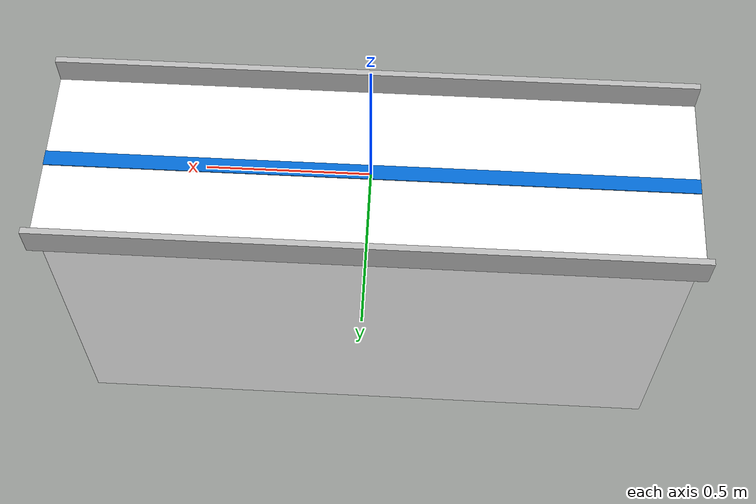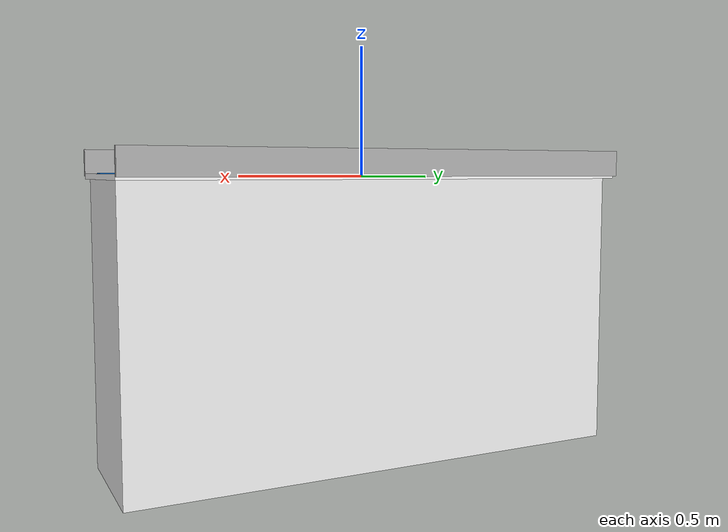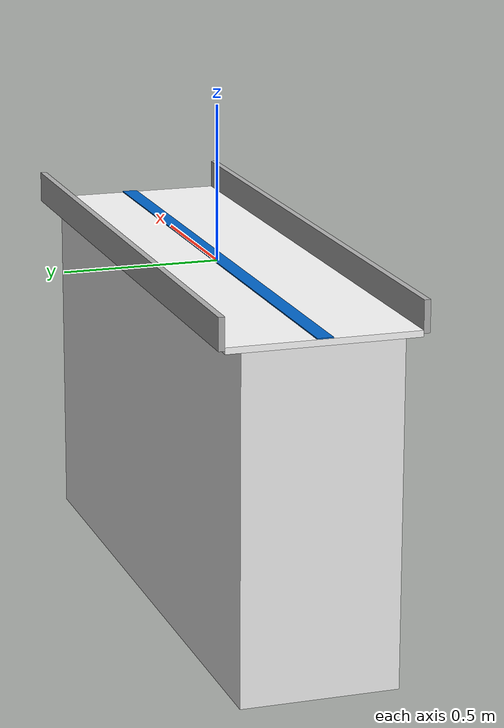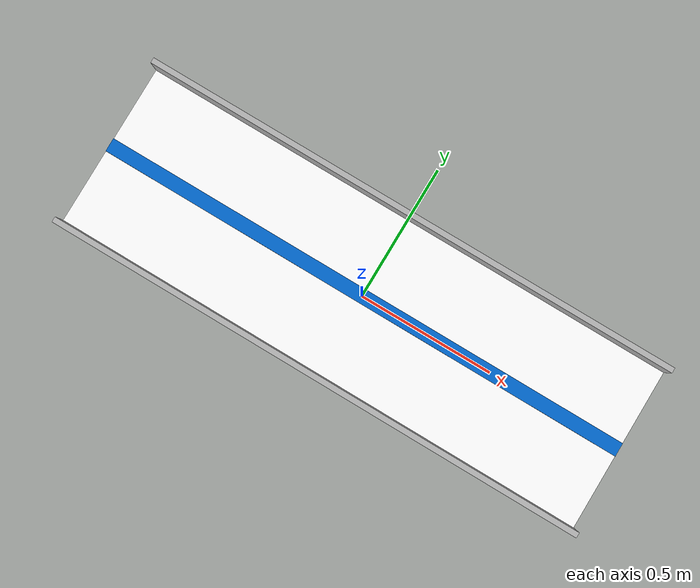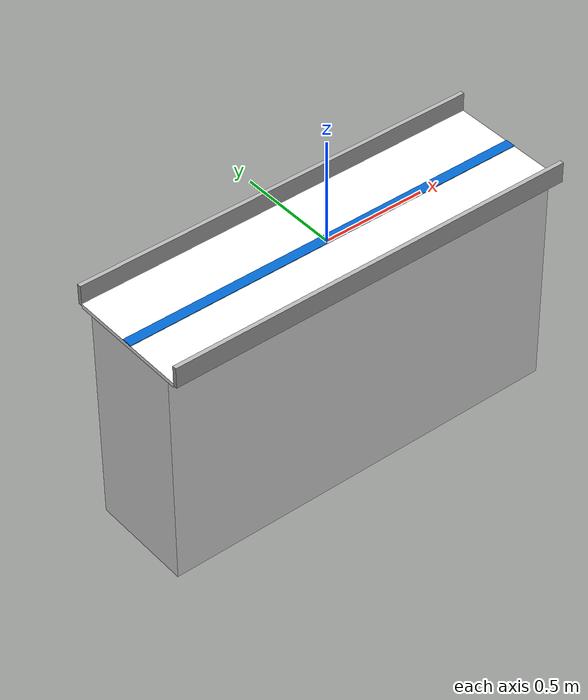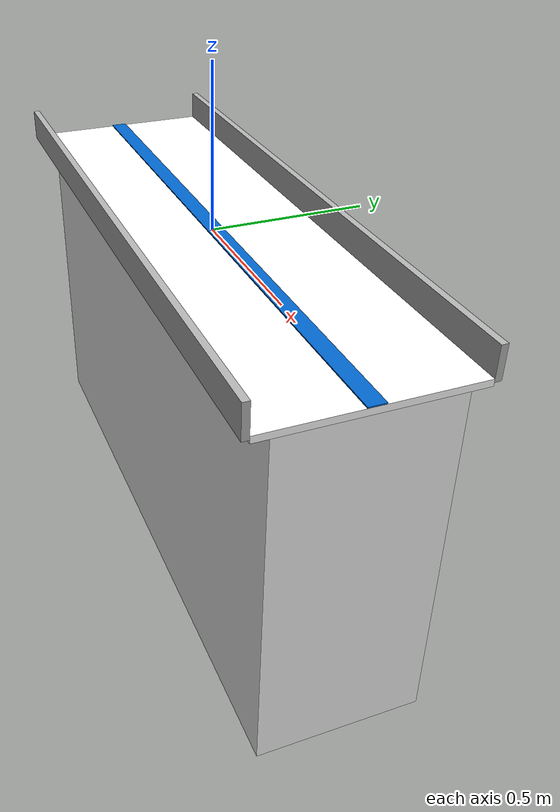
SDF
<?xml version="1.0" ?>
<sdf version="1.8">
  <model name="delivery_track">
    <static>true</static>
    <link name="link">
      <!-- Main Track Countertop (Pure White) -->
      <visual name="floor">
        <geometry><box><size>2.0 0.6 0.02</size></box></geometry>
        <material>
          <ambient>1 1 1 1</ambient>
          <diffuse>1 1 1 1</diffuse>
          <specular>0.8 0.8 0.8 1</specular>
        </material>
      </visual>
      <collision name="floor_c">
        <geometry><box><size>2.0 0.6 0.02</size></box></geometry>
      </collision>

      <!-- SOLID WHITE PEDESTAL (To ground) - Visual only to avoid ODE crashes -->
      <visual name="pedestal">
        <pose>0 0 -0.55 0 0 0</pose>
        <geometry><box><size>1.98 0.5 1.1</size></box></geometry>
        <material>
          <ambient>0.95 0.95 0.95 1</ambient>
          <diffuse>0.95 0.95 0.95 1</diffuse>
        </material>
      </visual>

      <!-- Right Silver Rail (Low Height) -->
      <visual name="rail_right">
        <pose>0 -0.31 0.05 0 0 0</pose>
        <geometry><box><size>2.0 0.02 0.1</size></box></geometry>
        <material>
          <ambient>0.7 0.7 0.7 1</ambient>
          <diffuse>0.7 0.7 0.7 1</diffuse>
          <specular>1 1 1 1</specular>
        </material>
      </visual>

      <!-- Left Silver Rail (Low Height) -->
      <visual name="rail_left">
        <pose>0 0.31 0.05 0 0 0</pose>
        <geometry><box><size>2.0 0.02 0.1</size></box></geometry>
        <material>
          <ambient>0.7 0.7 0.7 1</ambient>
          <diffuse>0.7 0.7 0.7 1</diffuse>
          <specular>1 1 1 1</specular>
        </material>
      </visual>

      <!-- Blue Tech Accent Strip -->
      <visual name="accent">
        <pose>0 0 0.011 0 0 0</pose>
        <geometry><box><size>2.0 0.05 0.005</size></box></geometry>
        <material>
          <ambient>0 0.4 0.8 1</ambient>
          <diffuse>0 0.4 0.8 1</diffuse>
          <emissive>0 0.2 0.4 1</emissive>
        </material>
      </visual>
    </link>
  </model>
</sdf>
